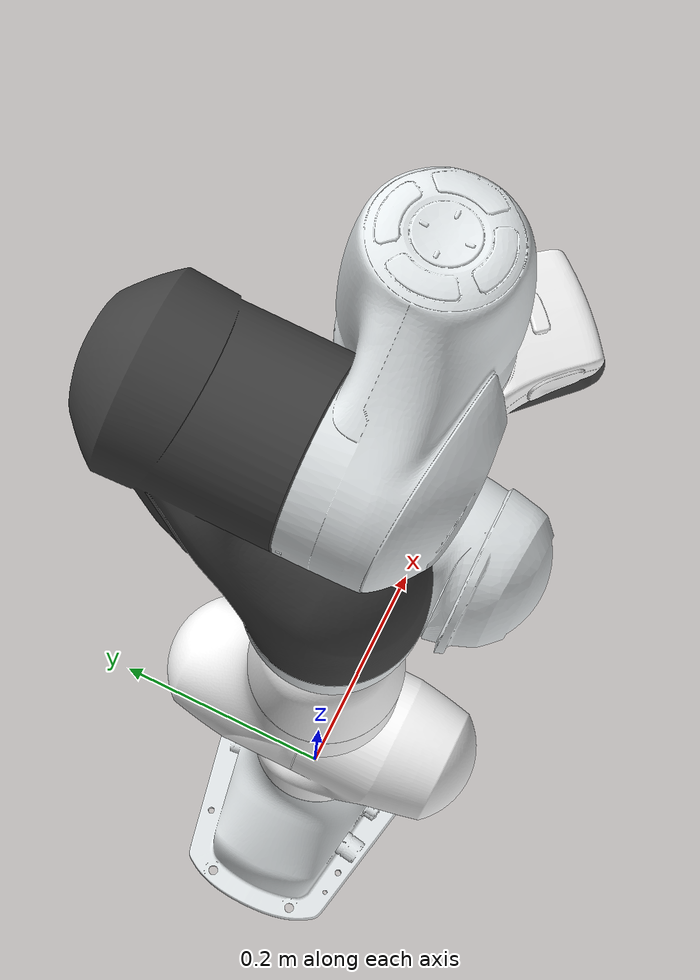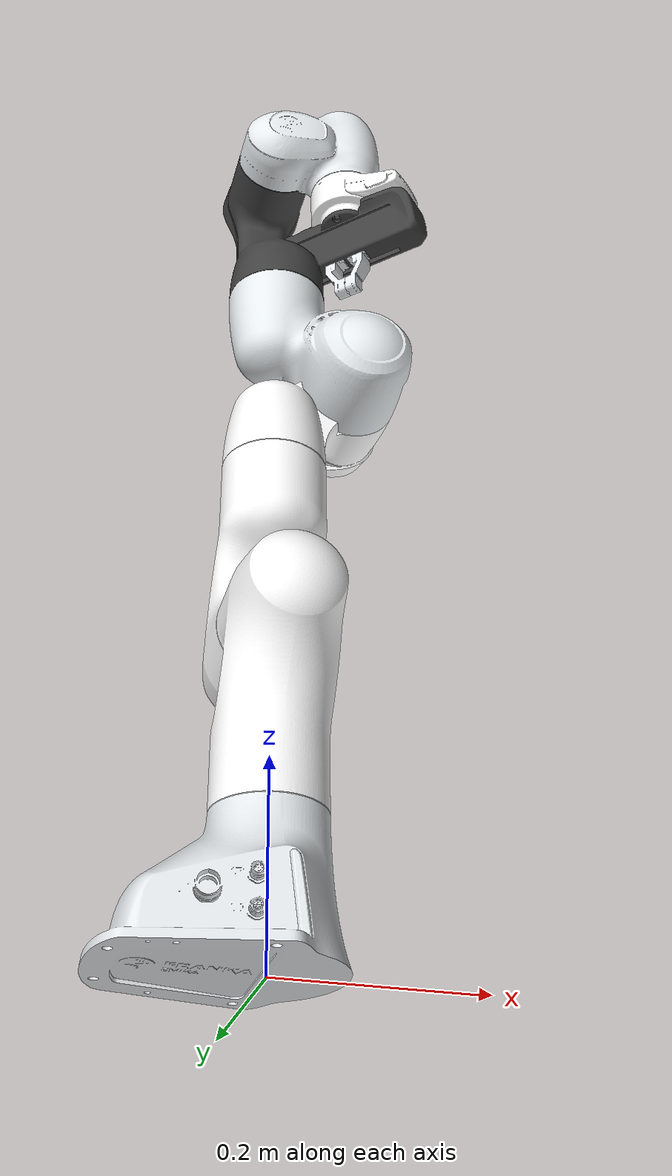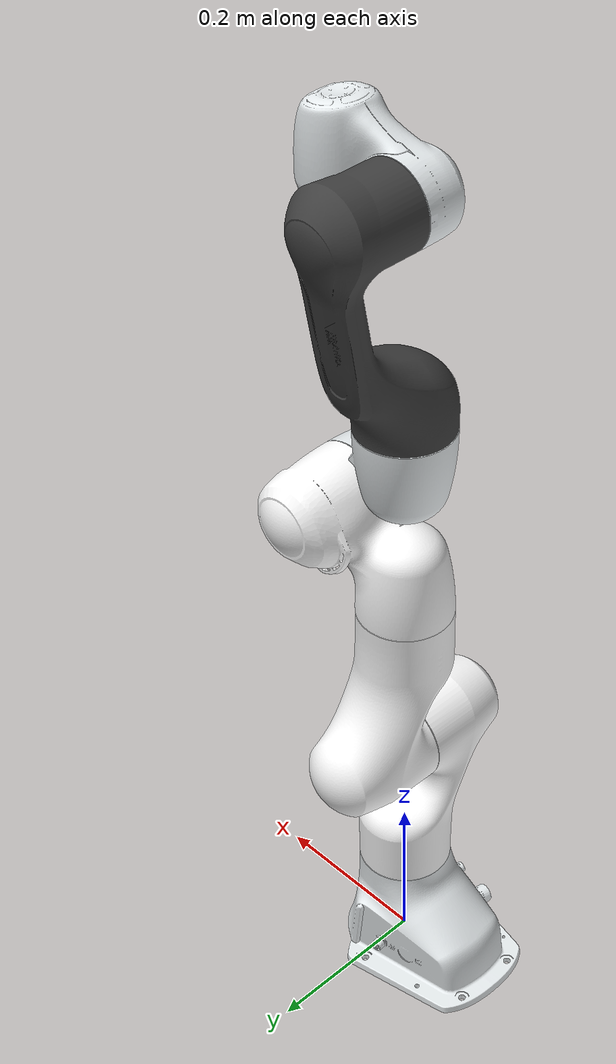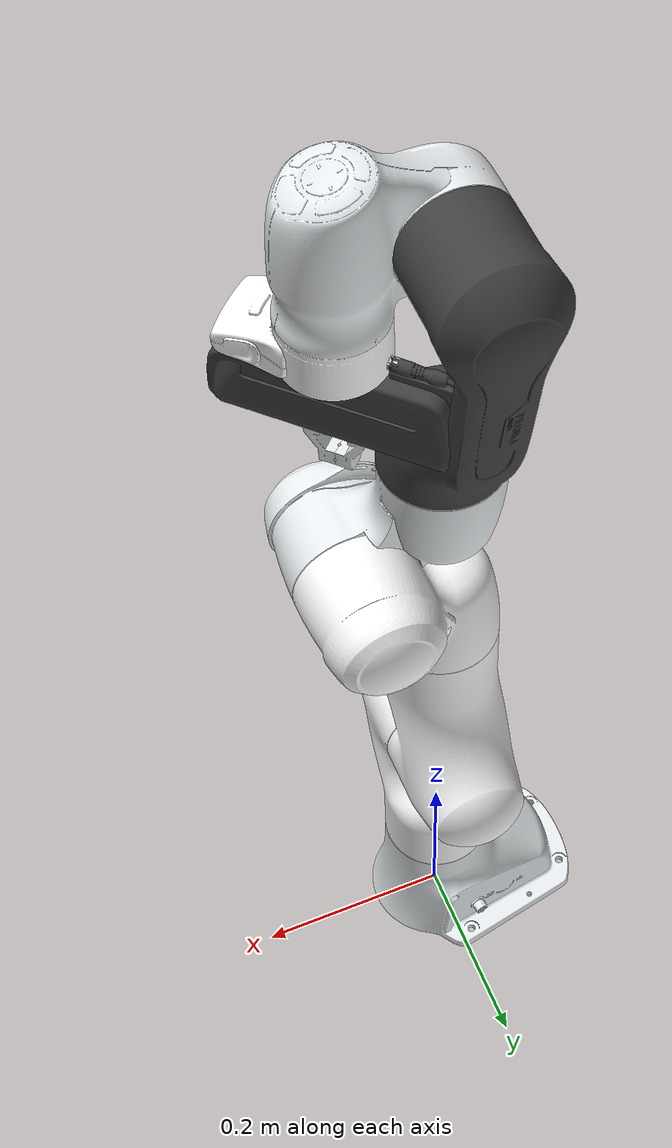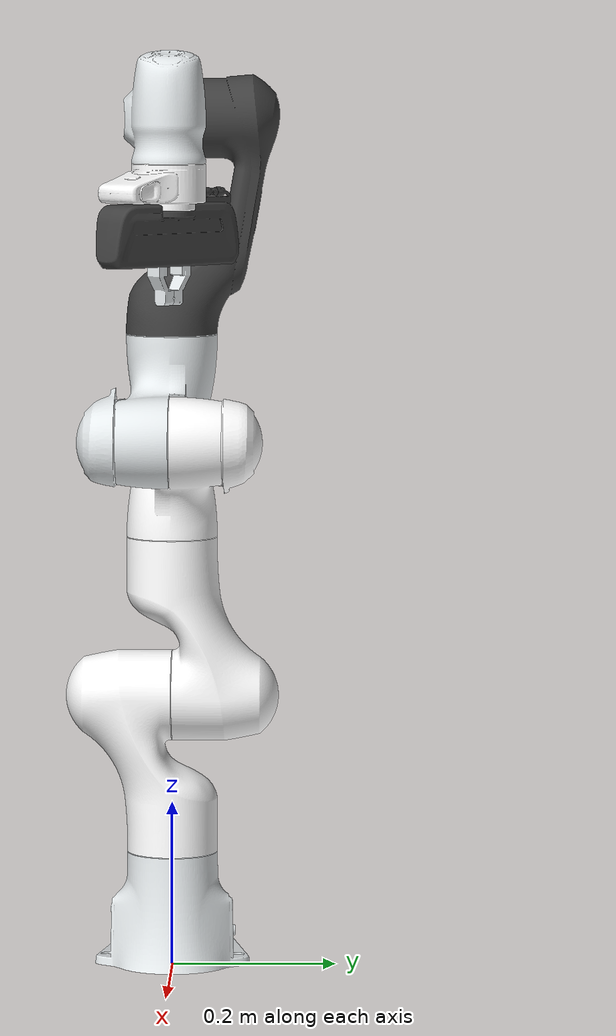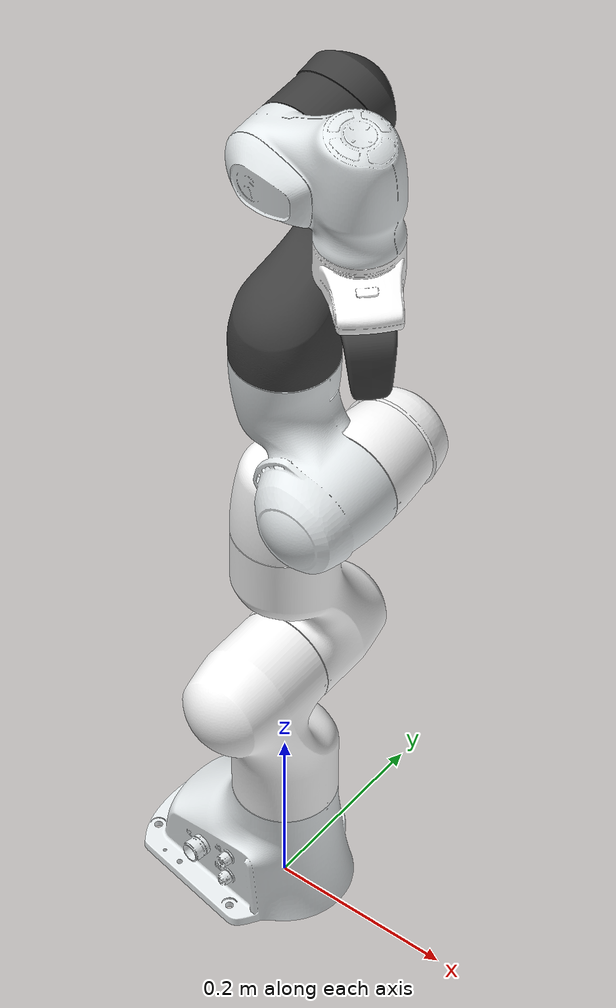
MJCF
<mujoco model="panda">
  <compiler angle="radian" meshdir="assets" autolimits="true"/>

  <option integrator="implicitfast"/>

  <default>
    <default class="panda">
      <material specular="0.5" shininess="0.25"/>
      <joint armature="0.1" damping="1" axis="0 0 1" range="-2.8973 2.8973"/>
      <general dyntype="none" biastype="affine" ctrlrange="-2.8973 2.8973" forcerange="-87 87"/>
      <default class="finger">
        <joint axis="0 1 0" type="slide" range="0 0.04"/>
      </default>

      <default class="visual">
        <geom type="mesh" contype="0" conaffinity="0" group="2"/>
      </default>
      <default class="collision">
        <geom type="mesh" group="3"/>
        <default class="fingertip_pad_collision_1">
          <geom type="box" size="0.0085 0.004 0.0085" pos="0 0.0055 0.0445"/>
        </default>
        <default class="fingertip_pad_collision_2">
          <geom type="box" size="0.003 0.002 0.003" pos="0.0055 0.002 0.05"/>
        </default>
        <default class="fingertip_pad_collision_3">
          <geom type="box" size="0.003 0.002 0.003" pos="-0.0055 0.002 0.05"/>
        </default>
        <default class="fingertip_pad_collision_4">
          <geom type="box" size="0.003 0.002 0.0035" pos="0.0055 0.002 0.0395"/>
        </default>
        <default class="fingertip_pad_collision_5">
          <geom type="box" size="0.003 0.002 0.0035" pos="-0.0055 0.002 0.0395"/>
        </default>
      </default>
    </default>
  </default>

  <asset>
    <material class="panda" name="white" rgba="1 1 1 1"/>
    <material class="panda" name="off_white" rgba="0.901961 0.921569 0.929412 1"/>
    <material class="panda" name="black" rgba="0.25 0.25 0.25 1"/>
    <material class="panda" name="green" rgba="0 1 0 1"/>
    <material class="panda" name="light_blue" rgba="0.039216 0.541176 0.780392 1"/>

    <!-- Collision meshes -->
    <mesh name="link0_c" file="link0.stl"/>
    <mesh name="link1_c" file="link1.stl"/>
    <mesh name="link2_c" file="link2.stl"/>
    <mesh name="link3_c" file="link3.stl"/>
    <mesh name="link4_c" file="link4.stl"/>
    <mesh name="link5_c0" file="link5_collision_0.obj"/>
    <mesh name="link5_c1" file="link5_collision_1.obj"/>
    <mesh name="link5_c2" file="link5_collision_2.obj"/>
    <mesh name="link6_c" file="link6.stl"/>
    <mesh name="link7_c" file="link7.stl"/>
    <mesh name="hand_c" file="hand.stl"/>
    <!-- One reduced full-shape visual mesh per body keeps Pages reliable. -->
    <mesh file="finger_0.obj"/>
    <mesh name="web_link0" file="web_link0.msh"/>
    <mesh name="web_link1" file="web_link1.msh"/>
    <mesh name="web_link2" file="web_link2.msh"/>
    <mesh name="web_link3" file="web_link3.msh"/>
    <mesh name="web_link4" file="web_link4.msh"/>
    <mesh name="web_link5" file="web_link5.msh"/>
    <mesh name="web_link6" file="web_link6.msh"/>
    <mesh name="web_link7" file="web_link7.msh"/>
    <mesh name="web_hand" file="web_hand.msh"/>
    <mesh name="web_finger" file="web_finger.msh"/>
  </asset>

  <worldbody>
    <light name="top" pos="0 0 2" mode="trackcom"/>
    <body name="link0" childclass="panda">
      <inertial mass="0.629769" pos="-0.041018 -0.00014 0.049974"
        fullinertia="0.00315 0.00388 0.004285 8.2904e-7 0.00015 8.2299e-6"/>
      <geom mesh="web_link0" material="off_white" class="visual"/>
      <geom mesh="link0_c" class="collision"/>
      <body name="link1" pos="0 0 0.333">
        <inertial mass="4.970684" pos="0.003875 0.002081 -0.04762"
          fullinertia="0.70337 0.70661 0.0091170 -0.00013900 0.0067720 0.019169"/>
        <joint name="joint1"/>
        <geom material="white" mesh="web_link1" class="visual"/>
        <geom mesh="link1_c" class="collision"/>
        <body name="link2" quat="1 -1 0 0">
          <inertial mass="0.646926" pos="-0.003141 -0.02872 0.003495"
            fullinertia="0.0079620 2.8110e-2 2.5995e-2 -3.925e-3 1.0254e-2 7.04e-4"/>
          <joint name="joint2" range="-1.7628 1.7628"/>
          <geom material="white" mesh="web_link2" class="visual"/>
          <geom mesh="link2_c" class="collision"/>
          <body name="link3" pos="0 -0.316 0" quat="1 1 0 0">
            <joint name="joint3"/>
            <inertial mass="3.228604" pos="2.7518e-2 3.9252e-2 -6.6502e-2"
              fullinertia="3.7242e-2 3.6155e-2 1.083e-2 -4.761e-3 -1.1396e-2 -1.2805e-2"/>
            <geom mesh="web_link3" material="white" class="visual"/>
            <geom mesh="link3_c" class="collision"/>
            <body name="link4" pos="0.0825 0 0" quat="1 1 0 0">
              <inertial mass="3.587895" pos="-5.317e-2 1.04419e-1 2.7454e-2"
                fullinertia="2.5853e-2 1.9552e-2 2.8323e-2 7.796e-3 -1.332e-3 8.641e-3"/>
              <joint name="joint4" range="-3.0718 -0.0698"/>
              <geom mesh="web_link4" material="off_white" class="visual"/>
              <geom mesh="link4_c" class="collision"/>
              <body name="link5" pos="-0.0825 0.384 0" quat="1 -1 0 0">
                <inertial mass="1.225946" pos="-1.1953e-2 4.1065e-2 -3.8437e-2"
                  fullinertia="3.5549e-2 2.9474e-2 8.627e-3 -2.117e-3 -4.037e-3 2.29e-4"/>
                <joint name="joint5"/>
                <geom mesh="web_link5" material="black" class="visual"/>
                <geom mesh="link5_c0" class="collision"/>
                <geom mesh="link5_c1" class="collision"/>
                <geom mesh="link5_c2" class="collision"/>
                <body name="link6" quat="1 1 0 0">
                  <inertial mass="1.666555" pos="6.0149e-2 -1.4117e-2 -1.0517e-2"
                    fullinertia="1.964e-3 4.354e-3 5.433e-3 1.09e-4 -1.158e-3 3.41e-4"/>
                  <joint name="joint6" range="-0.0175 3.7525"/>
                  <geom mesh="web_link6" material="off_white" class="visual"/>
                  <geom mesh="link6_c" class="collision"/>
                  <body name="link7" pos="0.088 0 0" quat="1 1 0 0">
                    <inertial mass="7.35522e-01" pos="1.0517e-2 -4.252e-3 6.1597e-2"
                      fullinertia="1.2516e-2 1.0027e-2 4.815e-3 -4.28e-4 -1.196e-3 -7.41e-4"/>
                    <joint name="joint7"/>
                    <geom mesh="web_link7" material="white" class="visual"/>
                    <geom mesh="link7_c" class="collision"/>
                    <body name="hand" pos="0 0 0.107" quat="0.9238795 0 0 -0.3826834">
                      <inertial mass="0.73" pos="-0.01 0 0.03" diaginertia="0.001 0.0025 0.0017"/>
                      <geom mesh="web_hand" material="black" class="visual"/>
                      <geom mesh="hand_c" class="collision"/>
                      <body name="left_finger" pos="0 0 0.0584">
                        <inertial mass="0.015" pos="0 0 0" diaginertia="2.375e-6 2.375e-6 7.5e-7"/>
                        <joint name="finger_joint1" class="finger"/>
                        <geom mesh="web_finger" material="off_white" class="visual"/>
                        <geom mesh="finger_0" class="collision"/>
                        <geom class="fingertip_pad_collision_1"/>
                        <geom class="fingertip_pad_collision_2"/>
                        <geom class="fingertip_pad_collision_3"/>
                        <geom class="fingertip_pad_collision_4"/>
                        <geom class="fingertip_pad_collision_5"/>
                      </body>
                      <body name="right_finger" pos="0 0 0.0584" quat="0 0 0 1">
                        <inertial mass="0.015" pos="0 0 0" diaginertia="2.375e-6 2.375e-6 7.5e-7"/>
                        <joint name="finger_joint2" class="finger"/>
                        <geom mesh="web_finger" material="off_white" class="visual"/>
                        <geom mesh="finger_0" class="collision"/>
                        <geom class="fingertip_pad_collision_1"/>
                        <geom class="fingertip_pad_collision_2"/>
                        <geom class="fingertip_pad_collision_3"/>
                        <geom class="fingertip_pad_collision_4"/>
                        <geom class="fingertip_pad_collision_5"/>
                      </body>
                    </body>
                  </body>
                </body>
              </body>
            </body>
          </body>
        </body>
      </body>
    </body>
  </worldbody>

  <tendon>
    <fixed name="split">
      <joint joint="finger_joint1" coef="0.5"/>
      <joint joint="finger_joint2" coef="0.5"/>
    </fixed>
  </tendon>

  <equality>
    <joint joint1="finger_joint1" joint2="finger_joint2" solimp="0.95 0.99 0.001" solref="0.005 1"/>
  </equality>

  <actuator>
    <general class="panda" name="actuator1" joint="joint1" gainprm="4500" biasprm="0 -4500 -450"/>
    <general class="panda" name="actuator2" joint="joint2" gainprm="4500" biasprm="0 -4500 -450"
      ctrlrange="-1.7628 1.7628"/>
    <general class="panda" name="actuator3" joint="joint3" gainprm="3500" biasprm="0 -3500 -350"/>
    <general class="panda" name="actuator4" joint="joint4" gainprm="3500" biasprm="0 -3500 -350"
      ctrlrange="-3.0718 -0.0698"/>
    <general class="panda" name="actuator5" joint="joint5" gainprm="2000" biasprm="0 -2000 -200" forcerange="-12 12"/>
    <general class="panda" name="actuator6" joint="joint6" gainprm="2000" biasprm="0 -2000 -200" forcerange="-12 12"
      ctrlrange="-0.0175 3.7525"/>
    <general class="panda" name="actuator7" joint="joint7" gainprm="2000" biasprm="0 -2000 -200" forcerange="-12 12"/>
    <!-- Remap original ctrlrange (0, 0.04) to (0, 255): 0.04 * 100 / 255 = 0.01568627451 -->
    <general class="panda" name="actuator8" tendon="split" forcerange="-100 100" ctrlrange="0 255"
      gainprm="0.01568627451 0 0" biasprm="0 -100 -10"/>
  </actuator>

  <keyframe>
    <key name="home" qpos="0 0 0 -1.57079 0 1.57079 -0.7853 0.04 0.04" ctrl="0 0 0 -1.57079 0 1.57079 -0.7853 255"/>
  </keyframe>

  <contact>
    <exclude body1="link0" body2="link1"/>
  </contact>
</mujoco>
